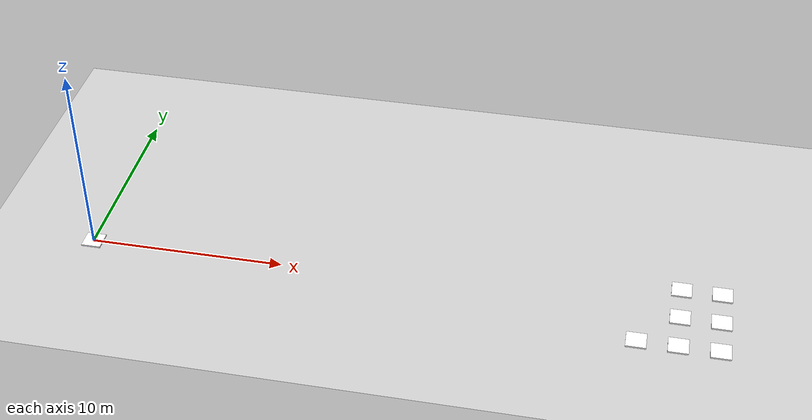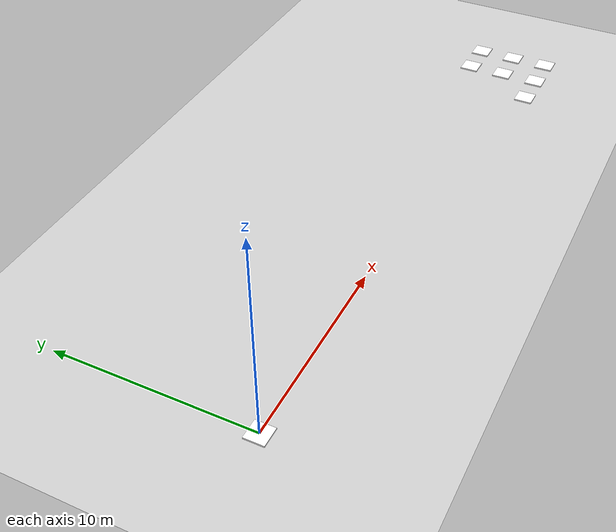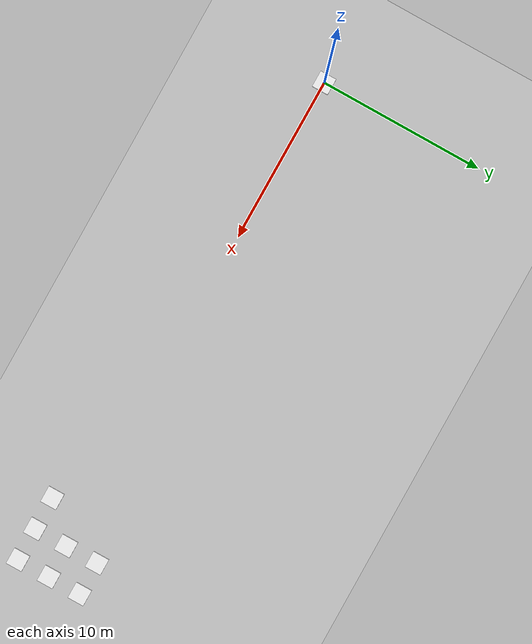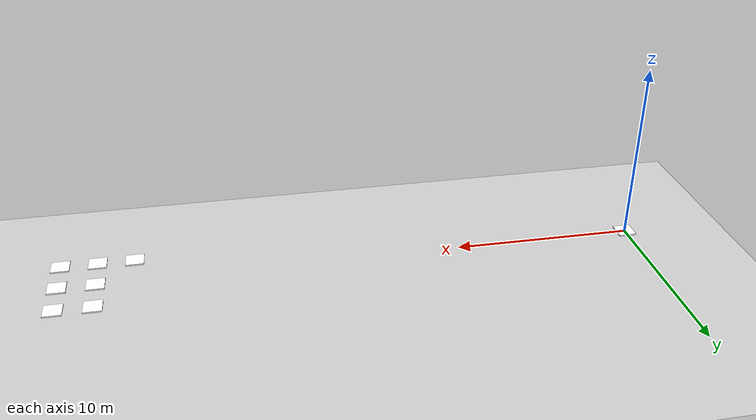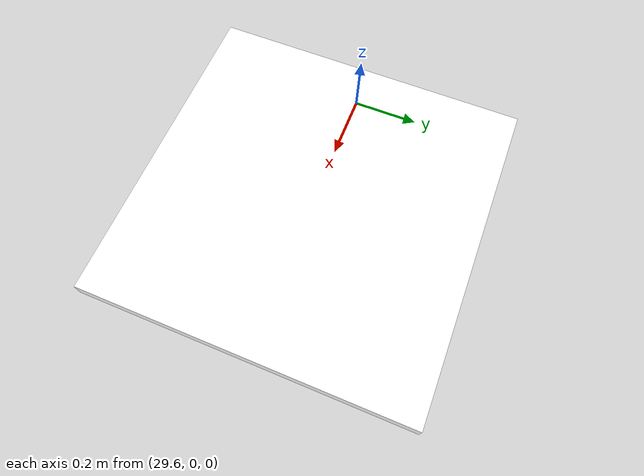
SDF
<sdf version="1.6">
 <world name="default">
  <physics type="ode">
   <ode>
    <solver><type>quick</type><iters>100</iters><sor>1.0</sor></solver>
    <constraints>
     <cfm>0.0</cfm>
     <erp>0.2</erp>
     <contact_max_correcting_vel>0.1</contact_max_correcting_vel>
     <contact_surface_layer>0.0</contact_surface_layer>
    </constraints>
   </ode>
   <real_time_update_rate>-1</real_time_update_rate>
  </physics>
  <gravity>0 0 -9.8</gravity>
  <include><uri>model://sun</uri></include>
  <model name="ground_plane">
   <static>true</static>
   <link name="link">
    <collision name="collision">
     <geometry><plane><normal>0 0 1</normal><size>5000 5000</size></plane></geometry>
     <surface><friction><ode><mu>100</mu><mu2>50</mu2></ode></friction></surface>
    </collision>
    <visual name="runway">
     <pose>000 0 0.005 0 0 0</pose>
     <cast_shadows>false</cast_shadows>
     <geometry><plane><normal>0 0 1</normal><size>1829 45</size></plane></geometry>
     <material>
      <script><uri>file://media/materials/scripts/gazebo.material</uri><name>Gazebo/Runway</name></script>
     </material>
    </visual>
    <visual name="grass">
     <pose>0 0 -0.1 0 0 0</pose>
     <cast_shadows>false</cast_shadows>
     <geometry><plane><normal>0 0 1</normal><size>5000 5000</size></plane></geometry>
     <material>
      <script><uri>file://media/materials/scripts/gazebo.material</uri><name>Gazebo/Grass</name></script>
     </material>
    </visual>
   </link>
  </model>
  <model name="aruco25"><include><uri>model://aruco25</uri></include></model>
  <model name="aruco1"><pose>32 -2 0 0 0 0</pose><include><uri>model://aruco1</uri></include></model>
  <model name="aruco2"><pose>32 0 0 0 0 0</pose><include><uri>model://aruco2</uri></include></model>
  <model name="aruco3"><pose>32 2 0 0 0 0</pose><include><uri>model://aruco3</uri></include></model>
  <model name="aruco4"><pose>30 -2 0 0 0 0</pose><include><uri>model://aruco4</uri></include></model>
  <model name="aruco5"><pose>30 0 0 0 0 0</pose><include><uri>model://aruco5</uri></include></model>
  <model name="aruco6"><pose>30 2 0 0 0 0</pose><include><uri>model://aruco6</uri></include></model>
  <model name="aruco7"><pose>28 -2 0 0 0 0</pose><include><uri>model://aruco7</uri></include></model>
 </world>
</sdf>

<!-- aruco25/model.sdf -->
<sdf version='1.7'>
  <model name='aruco25'>

    <link name='marker'>
      <pose frame=''>0 0 0 0 0 0</pose>
      <visual name='visual'>
        <geometry>
          <box>
            <size>1 1 0.1</size>
          </box>
        </geometry>
        <material>
          <script>
            <uri>model://aruco25/materials/scripts</uri>
            <uri>model://aruco25/materials/textures</uri>
            <name>ArucoVisualMarker/Marker25</name>
          </script>
          <ambient>1 1 1 1</ambient>
          <diffuse>1 1 1 1</diffuse>
          <specular>0 0 0 1</specular>
          <emissive>1 1 1 0</emissive>
          <shader type='vertex'>
            <normal_map>__default__</normal_map>
          </shader>
        </material>
        <pose frame=''>0 0 0 0 -0 0</pose>
        <cast_shadows>1</cast_shadows>
        <transparency>0</transparency>
      </visual>
      <collision name='collision'>
        <laser_retro>0</laser_retro>
        <max_contacts>10</max_contacts>
        <pose frame=''>0 0 0 0 -0 0</pose>
        <geometry>
          <box>
            <size>1 1 0.1</size>
          </box>
        </geometry>
      </collision>
    </link>
  </model>
</sdf>

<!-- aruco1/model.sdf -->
<sdf version='1.7'>
  <model name='aruco1'>

    <link name='marker'>
      <pose frame=''>0 0 0 0 0 0</pose>
      <visual name='visual'>
        <geometry>
          <box>
            <size>1 1 0.1</size>
          </box>
        </geometry>
        <material>
          <script>
            <uri>model://aruco1/materials/scripts</uri>
            <uri>model://aruco1/materials/textures</uri>
            <name>ArucoVisualMarker/Marker1</name>
          </script>
          <ambient>1 1 1 1</ambient>
          <diffuse>1 1 1 1</diffuse>
          <specular>0 0 0 1</specular>
          <emissive>1 1 1 0</emissive>
          <shader type='vertex'>
            <normal_map>__default__</normal_map>
          </shader>
        </material>
        <pose frame=''>0 0 0 0 -0 0</pose>
        <cast_shadows>1</cast_shadows>
        <transparency>0</transparency>
      </visual>
      <collision name='collision'>
        <laser_retro>0</laser_retro>
        <max_contacts>10</max_contacts>
        <pose frame=''>0 0 0 0 -0 0</pose>
        <geometry>
          <box>
            <size>1 1 0.1</size>
          </box>
        </geometry>
      </collision>
    </link>
  </model>
</sdf>

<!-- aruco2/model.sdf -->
<sdf version='1.7'>
  <model name='aruco2'>

    <link name='marker'>
      <pose frame=''>0 0 0 0 0 0</pose>
      <visual name='visual'>
        <geometry>
          <box>
            <size>1 1 0.1</size>
          </box>
        </geometry>
        <material>
          <script>
            <uri>model://aruco2/materials/scripts</uri>
            <uri>model://aruco2/materials/textures</uri>
            <name>ArucoVisualMarker/Marker2</name>
          </script>
          <ambient>1 1 1 1</ambient>
          <diffuse>1 1 1 1</diffuse>
          <specular>0 0 0 1</specular>
          <emissive>1 1 1 0</emissive>
          <shader type='vertex'>
            <normal_map>__default__</normal_map>
          </shader>
        </material>
        <pose frame=''>0 0 0 0 -0 0</pose>
        <cast_shadows>1</cast_shadows>
        <transparency>0</transparency>
      </visual>
      <collision name='collision'>
        <laser_retro>0</laser_retro>
        <max_contacts>10</max_contacts>
        <pose frame=''>0 0 0 0 -0 0</pose>
        <geometry>
          <box>
            <size>1 1 0.1</size>
          </box>
        </geometry>
      </collision>
    </link>
  </model>
</sdf>

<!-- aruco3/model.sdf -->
<sdf version='1.7'>
  <model name='aruco3'>

    <link name='marker'>
      <pose frame=''>0 0 0 0 0 0</pose>
      <visual name='visual'>
        <geometry>
          <box>
            <size>1 1 0.1</size>
          </box>
        </geometry>
        <material>
          <script>
            <uri>model://aruco3/materials/scripts</uri>
            <uri>model://aruco3/materials/textures</uri>
            <name>ArucoVisualMarker/Marker3</name>
          </script>
          <ambient>1 1 1 1</ambient>
          <diffuse>1 1 1 1</diffuse>
          <specular>0 0 0 1</specular>
          <emissive>1 1 1 0</emissive>
          <shader type='vertex'>
            <normal_map>__default__</normal_map>
          </shader>
        </material>
        <pose frame=''>0 0 0 0 -0 0</pose>
        <cast_shadows>1</cast_shadows>
        <transparency>0</transparency>
      </visual>
      <collision name='collision'>
        <laser_retro>0</laser_retro>
        <max_contacts>10</max_contacts>
        <pose frame=''>0 0 0 0 -0 0</pose>
        <geometry>
          <box>
            <size>1 1 0.1</size>
          </box>
        </geometry>
      </collision>
    </link>
  </model>
</sdf>

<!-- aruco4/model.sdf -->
<sdf version='1.7'>
  <model name='aruco4'>

    <link name='marker'>
      <pose frame=''>0 0 0 0 0 0</pose>
      <visual name='visual'>
        <geometry>
          <box>
            <size>1 1 0.1</size>
          </box>
        </geometry>
        <material>
          <script>
            <uri>model://aruco4/materials/scripts</uri>
            <uri>model://aruco4/materials/textures</uri>
            <name>ArucoVisualMarker/Marker4</name>
          </script>
          <ambient>1 1 1 1</ambient>
          <diffuse>1 1 1 1</diffuse>
          <specular>0 0 0 1</specular>
          <emissive>1 1 1 0</emissive>
          <shader type='vertex'>
            <normal_map>__default__</normal_map>
          </shader>
        </material>
        <pose frame=''>0 0 0 0 -0 0</pose>
        <cast_shadows>1</cast_shadows>
        <transparency>0</transparency>
      </visual>
      <collision name='collision'>
        <laser_retro>0</laser_retro>
        <max_contacts>10</max_contacts>
        <pose frame=''>0 0 0 0 -0 0</pose>
        <geometry>
          <box>
            <size>1 1 0.1</size>
          </box>
        </geometry>
      </collision>
    </link>
  </model>
</sdf>

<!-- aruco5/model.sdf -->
<sdf version='1.7'>
  <model name='aruco5'>

    <link name='marker'>
      <pose frame=''>0 0 0 0 0 0</pose>
      <visual name='visual'>
        <geometry>
          <box>
            <size>1 1 0.1</size>
          </box>
        </geometry>
        <material>
          <script>
            <uri>model://aruco5/materials/scripts</uri>
            <uri>model://aruco5/materials/textures</uri>
            <name>ArucoVisualMarker/Marker5</name>
          </script>
          <ambient>1 1 1 1</ambient>
          <diffuse>1 1 1 1</diffuse>
          <specular>0 0 0 1</specular>
          <emissive>1 1 1 0</emissive>
          <shader type='vertex'>
            <normal_map>__default__</normal_map>
          </shader>
        </material>
        <pose frame=''>0 0 0 0 -0 0</pose>
        <cast_shadows>1</cast_shadows>
        <transparency>0</transparency>
      </visual>
      <collision name='collision'>
        <laser_retro>0</laser_retro>
        <max_contacts>10</max_contacts>
        <pose frame=''>0 0 0 0 -0 0</pose>
        <geometry>
          <box>
            <size>1 1 0.1</size>
          </box>
        </geometry>
      </collision>
    </link>
  </model>
</sdf>

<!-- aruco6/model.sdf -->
<sdf version='1.7'>
  <model name='aruco6'>

    <link name='marker'>
      <pose frame=''>0 0 0 0 0 0</pose>
      <visual name='visual'>
        <geometry>
          <box>
            <size>1 1 0.1</size>
          </box>
        </geometry>
        <material>
          <script>
            <uri>model://aruco6/materials/scripts</uri>
            <uri>model://aruco6/materials/textures</uri>
            <name>ArucoVisualMarker/Marker6</name>
          </script>
          <ambient>1 1 1 1</ambient>
          <diffuse>1 1 1 1</diffuse>
          <specular>0 0 0 1</specular>
          <emissive>1 1 1 0</emissive>
          <shader type='vertex'>
            <normal_map>__default__</normal_map>
          </shader>
        </material>
        <pose frame=''>0 0 0 0 -0 0</pose>
        <cast_shadows>1</cast_shadows>
        <transparency>0</transparency>
      </visual>
      <collision name='collision'>
        <laser_retro>0</laser_retro>
        <max_contacts>10</max_contacts>
        <pose frame=''>0 0 0 0 -0 0</pose>
        <geometry>
          <box>
            <size>1 1 0.1</size>
          </box>
        </geometry>
      </collision>
    </link>
  </model>
</sdf>

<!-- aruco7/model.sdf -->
<sdf version='1.7'>
  <model name='aruco7'>

    <link name='marker'>
      <pose frame=''>0 0 0 0 0 0</pose>
      <visual name='visual'>
        <geometry>
          <box>
            <size>1 1 0.1</size>
          </box>
        </geometry>
        <material>
          <script>
            <uri>model://aruco7/materials/scripts</uri>
            <uri>model://aruco7/materials/textures</uri>
            <name>ArucoVisualMarker/Marker7</name>
          </script>
          <ambient>1 1 1 1</ambient>
          <diffuse>1 1 1 1</diffuse>
          <specular>0 0 0 1</specular>
          <emissive>1 1 1 0</emissive>
          <shader type='vertex'>
            <normal_map>__default__</normal_map>
          </shader>
        </material>
        <pose frame=''>0 0 0 0 -0 0</pose>
        <cast_shadows>1</cast_shadows>
        <transparency>0</transparency>
      </visual>
      <collision name='collision'>
        <laser_retro>0</laser_retro>
        <max_contacts>10</max_contacts>
        <pose frame=''>0 0 0 0 -0 0</pose>
        <geometry>
          <box>
            <size>1 1 0.1</size>
          </box>
        </geometry>
      </collision>
    </link>
  </model>
</sdf>
